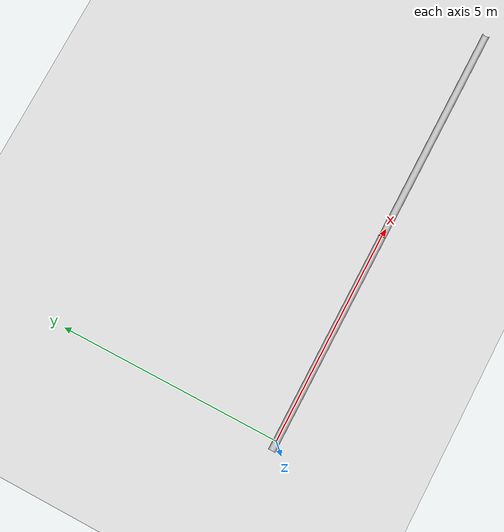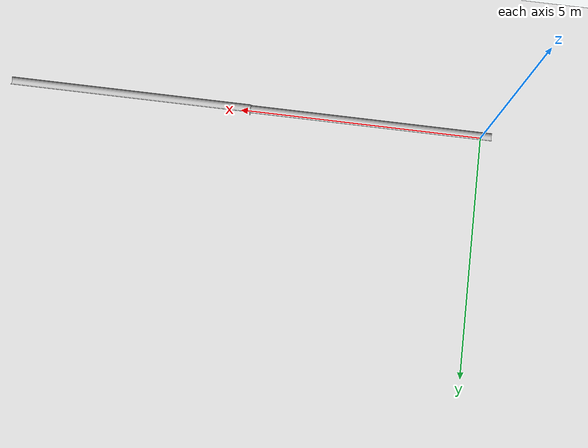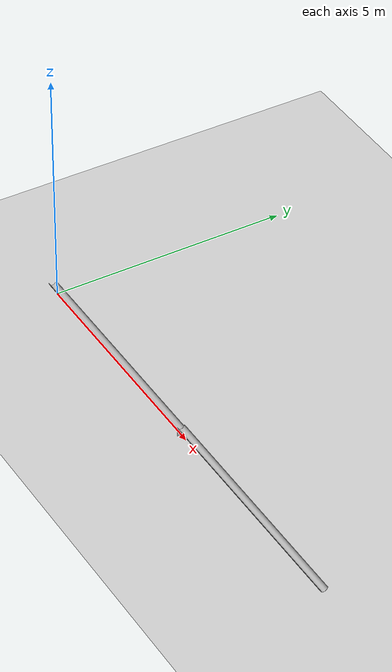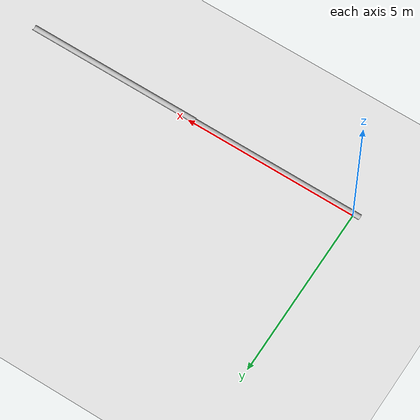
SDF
<sdf version="1.7">
  <world name="default">
      <!-- Add the Sun light to the world -->
    <light name='sun' type='directional'>
      <cast_shadows>1</cast_shadows>
      <pose>0 0 10 0 -0 0</pose>
      <diffuse>0.8 0.8 0.8 1</diffuse>
      <specular>0.2 0.2 0.2 1</specular>
      <attenuation>
        <range>1000</range>
        <constant>0.9</constant>
        <linear>0.01</linear>
        <quadratic>0.001</quadratic>
      </attenuation>
      <direction>-0.5 0.1 -0.9</direction>
      <spot>
        <inner_angle>0</inner_angle>
        <outer_angle>0</outer_angle>
        <falloff>0</falloff>
      </spot>
    </light>

    <gravity>0 0 -9.81</gravity> <!-- Default gravity -->
    <scene>
      <ambient>0.4 0.4 0.4 1.0</ambient> <!-- Use Gazebo's default ambient value -->
      <background>0.7 0.7 0.7 1.0</background> <!-- Use Gazebo's default background -->
      <shadows>1</shadows> <!-- Enable shadows -->
    </scene>

    <physics name="default_physics" default="true" type="ode"> <!-- Use default="true" -->
      <max_step_size>0.001</max_step_size> <!-- Typical default step size -->
      <real_time_factor>1</real_time_factor>
      <real_time_update_rate>1000</real_time_update_rate> <!-- Match max_step_size -->
      <ode>
        <solver>
          <type>quick</type> <!-- 'quick' is common, 'world' is more accurate but slower -->
          <iters>50</iters> <!-- Default iterations -->
          <sor>1.3</sor> <!-- Default SOR parameter -->
          <use_dynamic_moi_rescaling>false</use_dynamic_moi_rescaling> <!-- Usually false -->
        </solver>
        <constraints>
          <!-- Constraint Force Mixing (CFM) and Error Reduction Parameter (ERP) -->
          <!-- These defaults make constraints reasonably stiff -->
          <cfm>0.0</cfm>
          <erp>0.2</erp>
          <contact_max_correcting_vel>100.0</contact_max_correcting_vel>
          <contact_surface_layer>0.001</contact_surface_layer>
        </constraints>
      </ode>
    </physics>

    <!-- Add the hollow pipe model -->
    <model name="hollow_pipe">
      <static>true</static>  <!-- Pipe is static, it's not going to move -->
      <pose>-0.2 -0.08 0.08 1.5708 0 1.5708</pose>
      <link name="hollow_pipe_link">
        <visual name="hollow_pipe_visual">
          <geometry>
            <mesh>
              <!-- Path to the hollow pipe mesh -->
              <uri>model://pipe_swarm/models/hollow_pipe/meshes/half_hollow_pipe.stl</uri>
              <scale>0.001 0.001 0.001</scale>  <!-- Scale if needed -->
            </mesh>
          </geometry>
        </visual>

        <collision name="hollow_pipe_collision">
          <geometry>
            <mesh>
              <!-- Path to the hollow pipe mesh for collision -->
              <uri>model://pipe_swarm/models/hollow_pipe/meshes/half_hollow_pipe.stl</uri>
              <scale>0.001 0.001 0.001</scale>  <!-- Scale for collision geometry -->
            </mesh>
          </geometry>
          <surface>
            <friction>
              <ode>
                <mu>1.5</mu>   <!-- Increased friction -->
                <mu2>1.5</mu2>  <!-- Increased friction -->
                <slip1>0.0</slip1>
                <slip2>0.0</slip2>
              </ode>
            </friction>
            <contact>
              <ode>
                <kp>1000000.0</kp> <!-- Standard contact stiffness -->
                <kd>100.0</kd>     <!-- Standard contact damping -->
                <max_vel>1.0</max_vel>
                <min_depth>0.001</min_depth>
              </ode>
            </contact>
          </surface>
        </collision>
      </link>
    </model>

    <!-- Add the half hollow pipe model -->
    <model name="half_hollow_pipe">
      <static>true</static>  <!-- Pipe is static, it's not going to move -->
      <pose>4.8 -0.08 0.12 1.5708 0 1.5708</pose>
      <link name="hollow_pipe_link"> <!-- Note: Link name is reused -->
        <visual name="hollow_pipe_visual">
          <geometry>
            <mesh>
              <!-- Path to the hollow pipe mesh -->
              <uri>model://pipe_swarm/models/hollow_pipe/meshes/half_hollow_pipe.stl</uri>
              <scale>0.001 0.001 0.001</scale>  <!-- Scale if needed -->
            </mesh>
          </geometry>
        </visual>

        <collision name="half_hollow_pipe_collision">
          <geometry>
            <mesh>
              <!-- Path to the hollow pipe mesh for collision -->
              <uri>model://pipe_swarm/models/hollow_pipe/meshes/half_hollow_pipe.stl</uri>
              <scale>0.001 0.001 0.001</scale>  <!-- Scale for collision geometry -->
            </mesh>
          </geometry>
          <surface>
            <friction>
              <ode>
                <mu>1.5</mu>   <!-- Increased friction -->
                <mu2>1.5</mu2>  <!-- Increased friction -->
                <slip1>0.0</slip1>
                <slip2>0.0</slip2>
              </ode>
            </friction>
            <contact>
              <ode>
                <kp>1000000.0</kp> <!-- Standard contact stiffness -->
                <kd>100.0</kd>     <!-- Standard contact damping -->
                <max_vel>1.0</max_vel>
                <min_depth>0.001</min_depth>
              </ode>
            </contact>
          </surface>
        </collision>
      </link>
    </model>

    <!-- Add the pipe end model -->
    <model name="pipe_end">
      <static>true</static>  <!-- Pipe is static, it's not going to move -->
      <pose>4.8 -0.08 -0.12 1.5708 0 1.5708</pose>
      <link name="hollow_pipe_link"> <!-- Note: Link name is reused -->
        <visual name="hollow_pipe_visual">
          <geometry>
            <mesh>
              <!-- Path to the hollow pipe mesh -->
              <uri>model://pipe_swarm/models/hollow_pipe/meshes/pipe_end.stl</uri>
              <scale>0.001 0.001 0.001</scale>  <!-- Scale if needed -->
            </mesh>
          </geometry>
        </visual>

        <collision name="pipe_end_collision">
          <geometry>
            <mesh>
              <!-- Path to the hollow pipe mesh for collision -->
              <uri>model://pipe_swarm/models/hollow_pipe/meshes/pipe_end.stl</uri>
              <scale>0.001 0.001 0.001</scale>  <!-- Scale for collision geometry -->
            </mesh>
          </geometry>
          <surface>
            <friction>
              <ode>
                <mu>1.5</mu>
                <mu2>1.5</mu2>
                <slip1>0.0</slip1>
                <slip2>0.0</slip2>
              </ode>
            </friction>
            <contact>
              <ode>
                <kp>1000000.0</kp>
                <kd>100.0</kd>
                <max_vel>1.0</max_vel>
                <min_depth>0.001</min_depth>
              </ode>
            </contact>
          </surface>
        </collision>
      </link>
    </model>

    <!-- Ground plane (optional) -->
    <model name="ground_plane">
      <static>true</static>
      <link name="ground_plane_link">
        <visual name="ground_plane_visual">
          <geometry>
            <plane><normal>0 0 1</normal><size>10 10</size></plane>
          </geometry>
          <!-- Reverted ground material/surface to implicit defaults -->
        </visual>
        <collision name="ground_plane_collision">
          <geometry>
            <plane><normal>0 0 1</normal><size>10 10</size></plane>
          </geometry>
          <!-- Reverted ground material/surface to implicit defaults -->
        </collision>
      </link>
    </model>

  </world>
</sdf>
